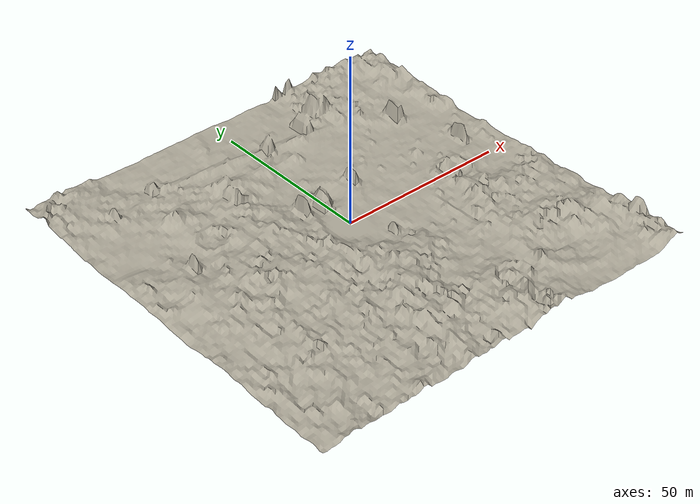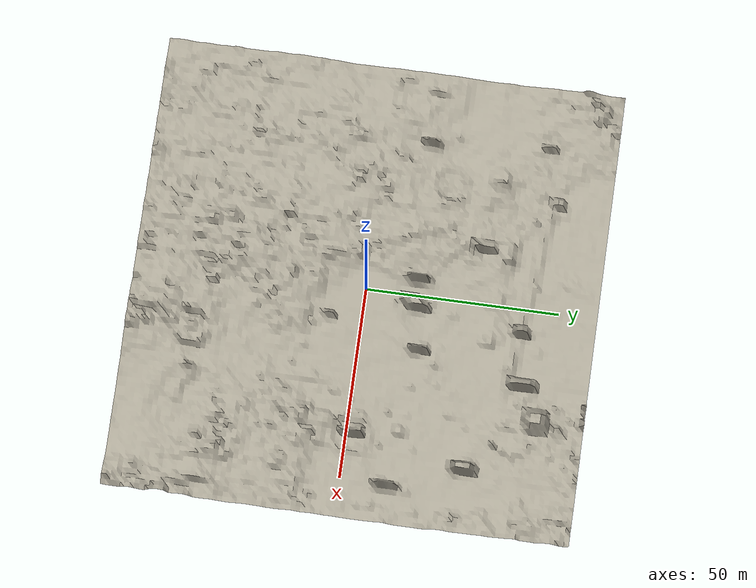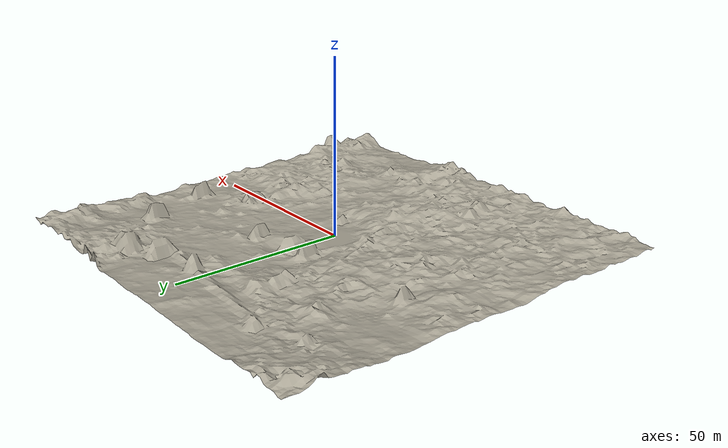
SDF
<?xml version="1.0" ?>
<sdf version="1.9">
  <world name="enhanced_lunar_test">
    <physics name="fast_stable" type="ignored">
      <max_step_size>0.004</max_step_size>
      <real_time_factor>1.0</real_time_factor>
    </physics>

    <plugin filename="gz-sim-physics-system" name="gz::sim::systems::Physics"/>
    <plugin filename="gz-sim-user-commands-system" name="gz::sim::systems::UserCommands"/>
    <plugin filename="gz-sim-scene-broadcaster-system" name="gz::sim::systems::SceneBroadcaster"/>
    <plugin filename="gz-sim-sensors-system" name="gz::sim::systems::Sensors">
      <render_engine>ogre</render_engine>
    </plugin>
    <plugin filename="gz-sim-imu-system" name="gz::sim::systems::Imu"/>

    <scene>
      <ambient>0.58 0.58 0.58 1</ambient>
      <background>0.025 0.025 0.035 1</background>
      <grid>true</grid>
      <shadows>true</shadows>
    </scene>

    <light type="directional" name="low_sun">
      <cast_shadows>true</cast_shadows>
      <pose>0 0 60 0 0 0</pose>
      <diffuse>0.95 0.93 0.88 1</diffuse>
      <specular>0.08 0.08 0.08 1</specular>
      <intensity>5</intensity>
      <direction>-0.65 0.25 -0.72</direction>
    </light>

    <model name="enhanced_lunar_terrain">
      <static>true</static>
      <link name="terrain_link">
        <collision name="terrain_collision">
          <geometry>
            <mesh><uri>file:///mnt/c/Users/Username/OneDrive/Desktop/husky/lunar_enhanced_nac_01/enhanced_lunar_terrain.obj</uri></mesh>
          </geometry>
        </collision>
        <visual name="terrain_visual">
          <geometry>
            <mesh><uri>file:///mnt/c/Users/Username/OneDrive/Desktop/husky/lunar_enhanced_nac_01/enhanced_lunar_terrain.obj</uri></mesh>
          </geometry>
          <material>
            <ambient>0.48 0.47 0.43 1</ambient>
            <diffuse>0.66 0.64 0.58 1</diffuse>
            <specular>0.02 0.02 0.02 1</specular>
          </material>
        </visual>
      </link>
    </model>
  </world>
</sdf>
